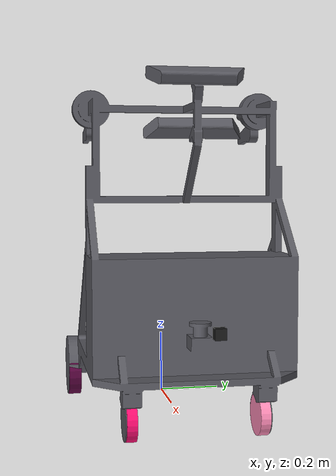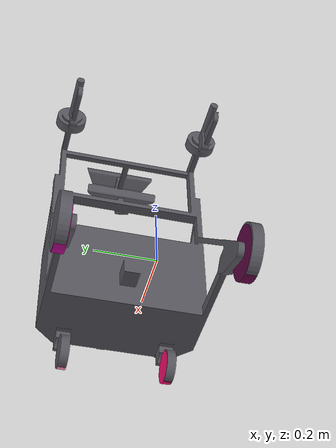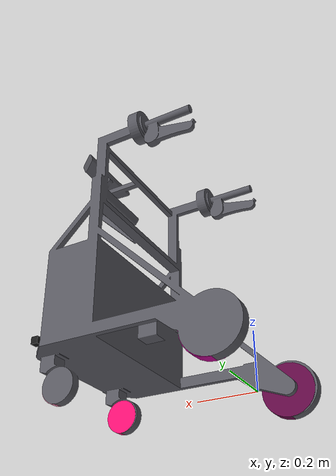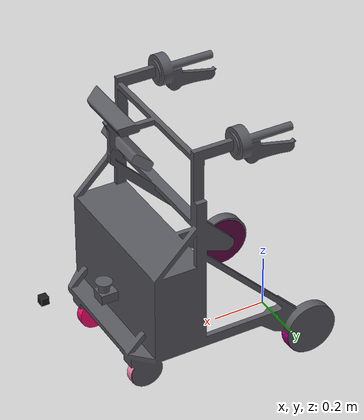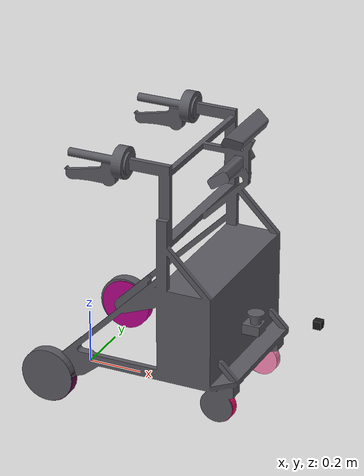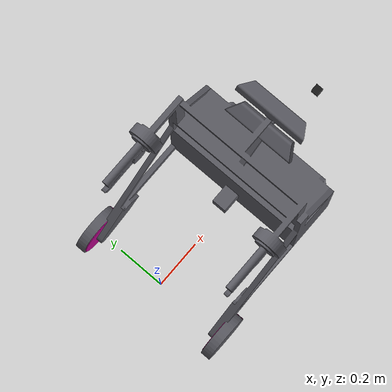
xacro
<?xml version="1.0"?>

<robot
  xmlns:xacro="http://www.ros.org/wiki/xacro"
  name="iwalk">

  <!-- ΒΑΣΙΚΕΣ ΠΑΡΑΜΕΤΡΟΙ                                  -->

  <xacro:property name="PI" value="3.141592653589793"/>

  <!-- Σταθερό ύψος του base_link από το έδαφος -->
  <xacro:property name="base_link_height" value="0.095"/>
  <!-- 0.001 αν το STL είναι σε mm, 1.0 αν είναι σε m -->

  <xacro:property name="mesh_scale" value="0.001"/>

  <!-- Μετατόπιση και περιστροφή του STL ως προς base_link -->
  <xacro:property name="mesh_x" value="0.682367371"/>
  <xacro:property name="mesh_y" value="-0.326500000"/>
  <xacro:property name="mesh_z" value="-0.095114396"/>

  <xacro:property name="mesh_roll"  value="0.0"/>
  <xacro:property name="mesh_pitch" value="0.0"/>
  <xacro:property name="mesh_yaw"   value="${PI/2.0}"/>

  <xacro:property name="body_length" value="0.784734741"/>
  <xacro:property name="body_width"  value="0.653000000"/>
  <xacro:property name="body_height" value="1.046494491"/>

  <xacro:property name="body_center_x" value="0.39"/>
  <xacro:property name="body_center_y" value="0.0"/>
  <xacro:property name="body_center_z" value="0.428247245"/>
    <!-- Προσωρινές δυναμικές παράμετροι -->
  <xacro:property name="body_mass" value="25.0"/>

  <!-- Πίσω κινητήριοι τροχοί -->
  <xacro:property name="rear_wheel_radius" value="0.095"/>
  <xacro:property name="rear_wheel_width"  value="0.04"/>
  <xacro:property name="rear_wheel_mass"   value="0.80"/>

  <xacro:property name="rear_wheel_separation" value="0.61"/>
  <xacro:property name="rear_wheel_x" value="0.0"/>
  <xacro:property name="rear_wheel_z" value="0.0"/>

  <!-- Εμπρός caster τροχοί -->
  <xacro:property name="front_wheel_radius" value="0.060"/>
  <xacro:property name="front_wheel_width"  value="0.030"/>
  <xacro:property name="front_wheel_mass"   value="0.30"/>

  <xacro:property name="front_caster_x" value="0.63"/>
  <xacro:property name="front_caster_separation" value="0.38"/>
  <xacro:property name="front_wheel_z" value="-0.035"/>

  <xacro:property name="caster_trail" value="0.03"/>
  <!-- MATERIALS                                            -->

  <material name="iwalk_gray">
    <color rgba="0.35 0.35 0.38 0.95"/>
  </material>

  <!-- Ανοιχτό ροζ -->
  <material name="front_left_pink">
    <color rgba="1.00 0.55 0.72 1.0"/>
  </material>

  <!-- Έντονο hot pink -->
  <material name="front_right_pink">
    <color rgba="1.00 0.05 0.45 1.0"/>
  </material>

  <!-- Magenta -->
  <material name="rear_left_pink">
    <color rgba="0.72 0.02 0.55 1.0"/>
  </material>

  <!-- Σκούρο plum pink -->
  <material name="rear_right_pink">
    <color rgba="0.38 0.03 0.27 1.0"/>
  </material>
  <!-- INERTIAL MACROS                                      -->

  <!-- Inertia ορθογώνιου παραλληλεπιπέδου -->
  <xacro:macro
    name="box_inertial"
    params="mass x y z origin_x origin_y origin_z">

    <inertial>
      <origin
        xyz="${origin_x} ${origin_y} ${origin_z}"
        rpy="0 0 0"/>

      <mass value="${mass}"/>

      <inertia
        ixx="${mass * (y*y + z*z) / 12.0}"
        ixy="0.0"
        ixz="0.0"
        iyy="${mass * (x*x + z*z) / 12.0}"
        iyz="0.0"
        izz="${mass * (x*x + y*y) / 12.0}"/>
    </inertial>

  </xacro:macro>

  <!-- Inertia συμπαγούς κυλινδρικού τροχού με άξονα y -->
  <xacro:macro
    name="wheel_inertial"
    params="mass radius width">

    <inertial>
      <origin xyz="0 0 0" rpy="0 0 0"/>

      <mass value="${mass}"/>

      <inertia
        ixx="${mass * (3.0*radius*radius + width*width) / 12.0}"
        ixy="0.0"
        ixz="0.0"
        iyy="${mass * radius*radius / 2.0}"
        iyz="0.0"
        izz="${mass * (3.0*radius*radius + width*width) / 12.0}"/>
    </inertial>

  </xacro:macro>

  <!-- BASE FOOTPRINT                                       -->
  <!-- Σημείο στο έδαφος κάτω από τον πίσω άξονα            -->

  <link name="base_footprint"/>

  <!-- BASE LINK                                            -->
  <!-- Βρίσκεται στο μέσο του πίσω άξονα, στο ύψος          -->
  <!-- των κέντρων των τροχών                               -->

  <link name="base_link">

    <!-- Πραγματική οπτική γεωμετρία του i-Walk -->
    <visual name="iwalk_body_visual">

      <origin
        xyz="${mesh_x} ${mesh_y} ${mesh_z}"
        rpy="${mesh_roll} ${mesh_pitch} ${mesh_yaw}"/>

      <geometry>
        <mesh
          filename="package://iwalk_description/meshes/iwalk_body.STL"
          scale="${mesh_scale} ${mesh_scale} ${mesh_scale}"/>
      </geometry>

      <material name="iwalk_gray"/>

    </visual>

    <!-- Use the physical mesh, preserving openings instead of a solid bounding box.
         Validate Gazebo contact performance; later replace with a simplified mesh if needed. -->
    <collision name="iwalk_body_collision">
      <origin xyz="${mesh_x} ${mesh_y} ${mesh_z}"
              rpy="${mesh_roll} ${mesh_pitch} ${mesh_yaw}"/>
      <geometry>
        <mesh filename="package://iwalk_description/meshes/iwalk_body.STL"
              scale="${mesh_scale} ${mesh_scale} ${mesh_scale}"/>
      </geometry>
    </collision>

    <xacro:box_inertial
      mass="${body_mass}"
      x="${body_length}"
      y="${body_width}"
      z="${body_height}"
      origin_x="${body_center_x}"
      origin_y="${body_center_y}"
      origin_z="${body_center_z}"/>

  </link>

  <!-- Runtime-compatible root at the rear axle projection. -->
  <link name="sim_base"/>
  <joint name="sim_base_joint" type="fixed">
    <parent link="sim_base"/>
    <child link="base_link"/>
    <origin xyz="0 0 ${base_link_height}" rpy="0 0 0"/>
  </joint>

  <!-- Preserve the existing footprint frame's physical position. -->
  <joint name="base_footprint_joint" type="fixed">
    <parent link="base_link"/>
    <child link="base_footprint"/>
    <origin xyz="0.39 0 ${-base_link_height}" rpy="0 0 0"/>
  </joint>

  <xacro:include filename="sensors.xacro"/>
  <xacro:iwalk_lidar/>

  <!-- REAR DRIVEN WHEELS                                   -->
  <!-- Δομή αντίστοιχη με differential-drive robot          -->

  <xacro:macro
    name="rear_wheel"
    params="side y_position material_name">

    <link name="${side}_rear_wheel_link">

      <visual name="${side}_rear_wheel_visual">

        <!--
          Ο cylinder έχει αρχικά axis z.
          Rotation π/2 γύρω από x => wheel axis κατά y.
        -->
        <origin xyz="0 0 0" rpy="${PI/2.0} 0 0"/>

        <geometry>
          <cylinder
            radius="${rear_wheel_radius}"
            length="${rear_wheel_width}"/>
        </geometry>

        <material name="${material_name}"/>

      </visual>

      <collision name="${side}_rear_wheel_collision">

        <origin xyz="0 0 0" rpy="${PI/2.0} 0 0"/>

        <geometry>
          <cylinder
            radius="${rear_wheel_radius}"
            length="${rear_wheel_width}"/>
        </geometry>

      </collision>

      <xacro:wheel_inertial
        mass="${rear_wheel_mass}"
        radius="${rear_wheel_radius}"
        width="${rear_wheel_width}"/>

    </link>

    <joint
      name="${side}_rear_wheel_joint"
      type="continuous">

      <parent link="base_link"/>
      <child link="${side}_rear_wheel_link"/>

      <origin
        xyz="${rear_wheel_x} ${y_position} ${rear_wheel_z}"
        rpy="0 0 0"/>

      <axis xyz="0 1 0"/>

      <limit effort="50.0" velocity="20.0"/>

      <dynamics damping="0.01" friction="0.0"/>

    </joint>

  </xacro:macro>

  <xacro:rear_wheel
    side="left"
    y_position="${rear_wheel_separation / 2.0}"
    material_name="rear_left_pink"/>

  <xacro:rear_wheel
    side="right"
    y_position="${-rear_wheel_separation / 2.0}"
    material_name="rear_right_pink"/>

  <!-- FRONT PASSIVE CASTERS                                -->
  <!-- Κάθε caster έχει:                                    -->
  <!-- 1. swivel joint γύρω από z                           -->
  <!-- 2. wheel joint γύρω από y                            -->

  <xacro:macro
    name="front_caster"
    params="side y_position material_name">

    <!-- Περιστρεφόμενη βάση caster -->
    <link name="${side}_caster_swivel_link">

      <!-- Μικρή θετική μάζα για το μελλοντικό Gazebo -->
      <inertial>
        <origin xyz="0 0 0" rpy="0 0 0"/>
        <mass value="0.20"/>

        <inertia
          ixx="0.0002"
          ixy="0.0"
          ixz="0.0"
          iyy="0.0002"
          iyz="0.0"
          izz="0.0002"/>
      </inertial>

    </link>

    <joint
      name="${side}_caster_swivel_joint"
      type="continuous">

      <parent link="base_link"/>
      <child link="${side}_caster_swivel_link"/>

      <origin
        xyz="${front_caster_x}
            ${y_position}
            ${front_wheel_z}"
        rpy="0 0 0"/>

      <axis xyz="0 0 1"/>

      <limit effort="10.0" velocity="20.0"/>

      <dynamics damping="0.05" friction="0.01"/>

    </joint>

    <!-- Ο πραγματικός εμπρός τροχός -->
    <link name="${side}_front_wheel_link">

      <visual name="${side}_front_wheel_visual">

        <origin xyz="0 0 0" rpy="${PI/2.0} 0 0"/>

        <geometry>
          <cylinder
            radius="${front_wheel_radius}"
            length="${front_wheel_width}"/>
        </geometry>

        <material name="${material_name}"/>

      </visual>

      <collision name="${side}_front_wheel_collision">

        <origin xyz="0 0 0" rpy="${PI/2.0} 0 0"/>

        <geometry>
          <cylinder
            radius="${front_wheel_radius}"
            length="${front_wheel_width}"/>
        </geometry>

      </collision>

      <xacro:wheel_inertial
        mass="${front_wheel_mass}"
        radius="${front_wheel_radius}"
        width="${front_wheel_width}"/>

    </link>

    <joint
      name="${side}_front_wheel_joint"
      type="continuous">

      <parent link="${side}_caster_swivel_link"/>
      <child link="${side}_front_wheel_link"/>

      <!-- Wheel axle λίγο πίσω από το caster swivel axis -->
      <origin
        xyz="${-caster_trail} 0 0"
        rpy="0 0 0"/>

      <axis xyz="0 1 0"/>

      <limit effort="20.0" velocity="20.0"/>

      <dynamics damping="0.01" friction="0.0"/>

    </joint>

  </xacro:macro>

  <xacro:front_caster
    side="left"
    y_position="${front_caster_separation / 2.0}"
    material_name="front_left_pink"/>

  <xacro:front_caster
    side="right"
    y_position="${-front_caster_separation / 2.0}"
    material_name="front_right_pink"/>

</robot>

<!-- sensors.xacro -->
<robot xmlns:xacro="http://www.ros.org/wiki/xacro">
  <!-- One sensor mount for every controller; coordinates relative to base_link. -->
  <xacro:macro name="iwalk_lidar" params="">
    <link name="laser_frame">
      <visual>
        <geometry><box size="0.03 0.03 0.03"/></geometry>
        <material name="lidar_black"><color rgba="0.1 0.1 0.1 1"/></material>
      </visual>
    </link>
    <joint name="laser_joint" type="fixed">
      <parent link="base_link"/><child link="laser_frame"/>
      <origin xyz="0.885 0 ${0.35 - base_link_height}" rpy="0 0 0"/>
    </joint>
  </xacro:macro>
</robot>
